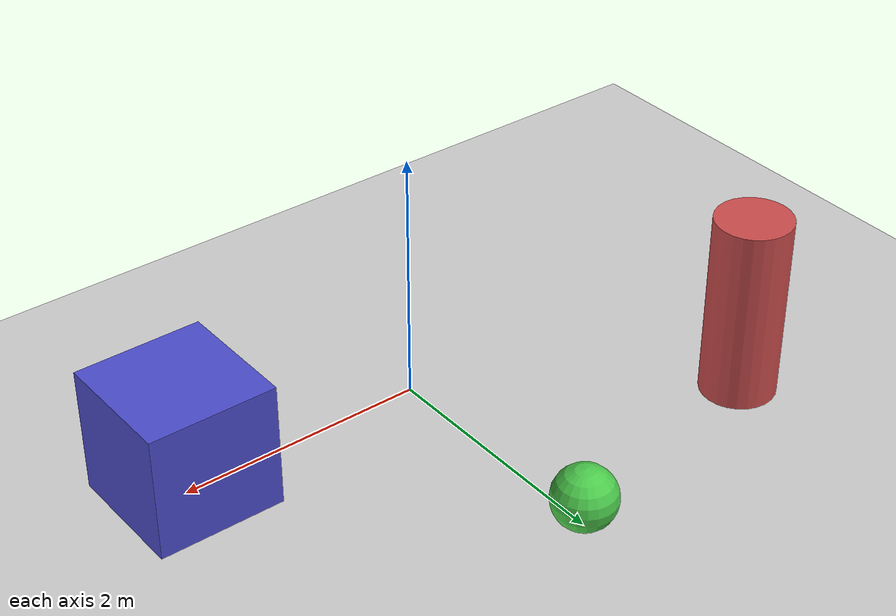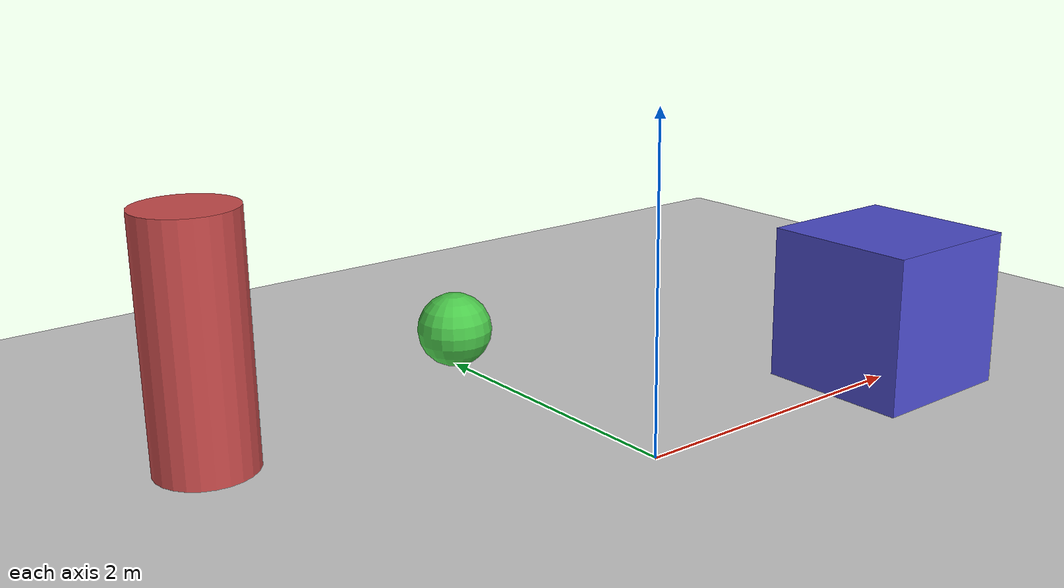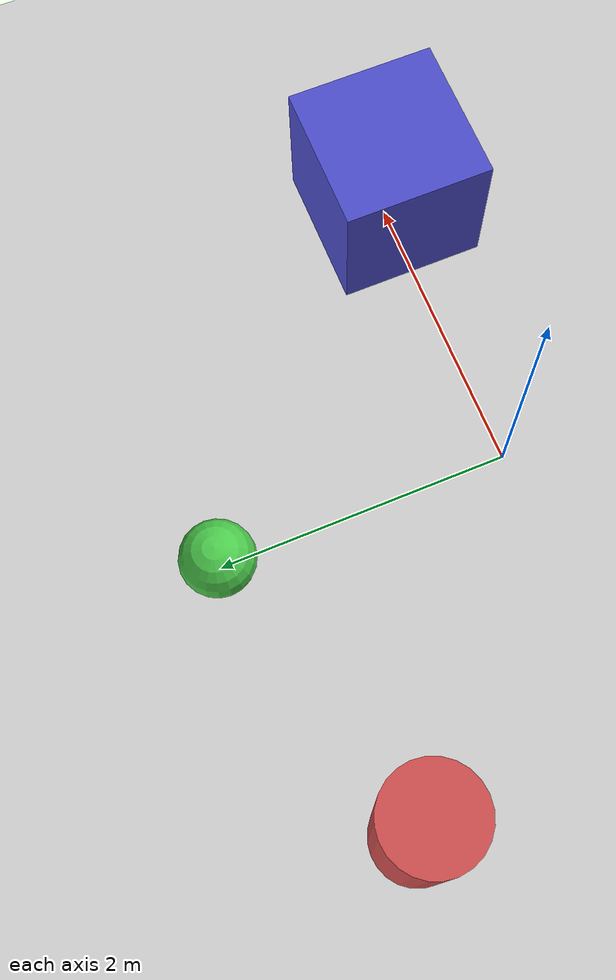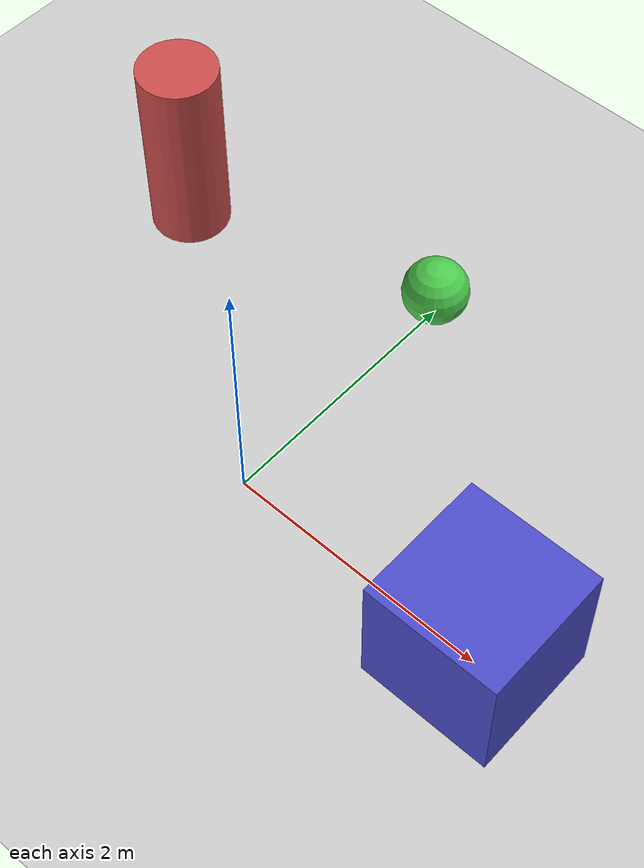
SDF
<?xml version="1.0" ?>
<sdf version="1.9">
  <world name="humanoid_world">

    <!-- Physics Configuration -->
    <physics name="dart_physics" type="dart">
      <max_step_size>0.001</max_step_size>
      <real_time_factor>1.0</real_time_factor>
      <real_time_update_rate>1000</real_time_update_rate>
      <dart>
        <collision_detector>bullet</collision_detector>
      </dart>
    </physics>

    <!-- Plugins -->
    <plugin
      filename="gz-sim-physics-system"
      name="gz::sim::systems::Physics">
    </plugin>
    <plugin
      filename="gz-sim-user-commands-system"
      name="gz::sim::systems::UserCommands">
    </plugin>
    <plugin
      filename="gz-sim-scene-broadcaster-system"
      name="gz::sim::systems::SceneBroadcaster">
    </plugin>
    <plugin
      filename="gz-sim-contact-system"
      name="gz::sim::systems::Contact">
    </plugin>

    <!-- Lighting -->
    <light type="directional" name="sun">
      <cast_shadows>true</cast_shadows>
      <pose>0 0 10 0 0 0</pose>
      <diffuse>0.8 0.8 0.8 1</diffuse>
      <specular>0.2 0.2 0.2 1</specular>
      <attenuation>
        <range>1000</range>
        <constant>0.9</constant>
        <linear>0.01</linear>
        <quadratic>0.001</quadratic>
      </attenuation>
      <direction>-0.5 0.1 -0.9</direction>
    </light>

    <!-- Ground Plane -->
    <model name="ground_plane">
      <static>true</static>
      <link name="link">
        <collision name="collision">
          <geometry>
            <plane>
              <normal>0 0 1</normal>
              <size>100 100</size>
            </plane>
          </geometry>
          <surface>
            <friction>
              <ode>
                <mu>1.0</mu>
                <mu2>1.0</mu2>
              </ode>
            </friction>
            <bounce>
              <restitution_coefficient>0.0</restitution_coefficient>
            </bounce>
          </surface>
        </collision>
        <visual name="visual">
          <geometry>
            <plane>
              <normal>0 0 1</normal>
              <size>100 100</size>
            </plane>
          </geometry>
          <material>
            <ambient>0.8 0.8 0.8 1</ambient>
            <diffuse>0.8 0.8 0.8 1</diffuse>
            <specular>0.1 0.1 0.1 1</specular>
          </material>
        </visual>
      </link>
    </model>

    <!-- Obstacle: Box -->
    <model name="obstacle_box">
      <static>true</static>
      <pose>2 0 0.5 0 0 0</pose>
      <link name="link">
        <collision name="collision">
          <geometry>
            <box>
              <size>1.0 1.0 1.0</size>
            </box>
          </geometry>
        </collision>
        <visual name="visual">
          <geometry>
            <box>
              <size>1.0 1.0 1.0</size>
            </box>
          </geometry>
          <material>
            <ambient>0.3 0.3 0.8 1</ambient>
            <diffuse>0.3 0.3 0.8 1</diffuse>
          </material>
        </visual>
      </link>
    </model>

    <!-- Obstacle: Cylinder -->
    <model name="obstacle_cylinder">
      <static>true</static>
      <pose>-2 1.5 0.75 0 0 0</pose>
      <link name="link">
        <collision name="collision">
          <geometry>
            <cylinder>
              <radius>0.3</radius>
              <length>1.5</length>
            </cylinder>
          </geometry>
        </collision>
        <visual name="visual">
          <geometry>
            <cylinder>
              <radius>0.3</radius>
              <length>1.5</length>
            </cylinder>
          </geometry>
          <material>
            <ambient>0.8 0.3 0.3 1</ambient>
            <diffuse>0.8 0.3 0.3 1</diffuse>
          </material>
        </visual>
      </link>
    </model>

    <!-- Obstacle: Sphere (dynamic - can be pushed) -->
    <model name="ball">
      <pose>0 2 0.25 0 0 0</pose>
      <link name="link">
        <inertial>
          <mass>1.0</mass>
          <inertia>
            <ixx>0.025</ixx>
            <iyy>0.025</iyy>
            <izz>0.025</izz>
          </inertia>
        </inertial>
        <collision name="collision">
          <geometry>
            <sphere>
              <radius>0.25</radius>
            </sphere>
          </geometry>
          <surface>
            <friction>
              <ode>
                <mu>0.8</mu>
                <mu2>0.8</mu2>
              </ode>
            </friction>
            <bounce>
              <restitution_coefficient>0.5</restitution_coefficient>
            </bounce>
          </surface>
        </collision>
        <visual name="visual">
          <geometry>
            <sphere>
              <radius>0.25</radius>
            </sphere>
          </geometry>
          <material>
            <ambient>0.3 0.8 0.3 1</ambient>
            <diffuse>0.3 0.8 0.3 1</diffuse>
          </material>
        </visual>
      </link>
    </model>

    <!-- Gravity -->
    <gravity>0 0 -9.81</gravity>

    <!-- Scene Settings -->
    <scene>
      <ambient>0.4 0.4 0.4 1</ambient>
      <background>0.7 0.7 0.7 1</background>
      <shadows>true</shadows>
    </scene>

  </world>
</sdf>
